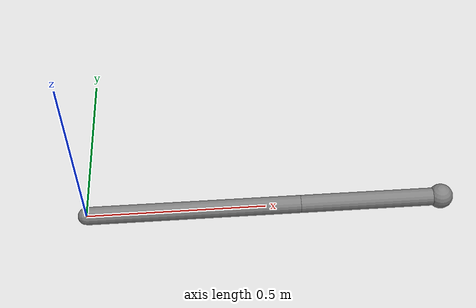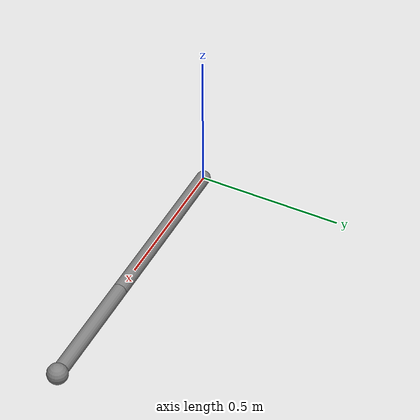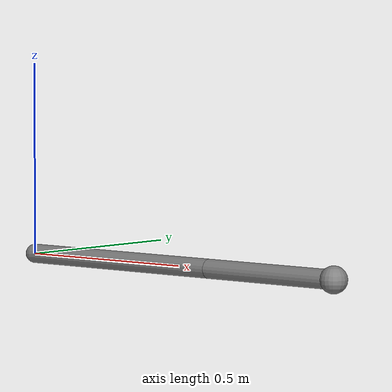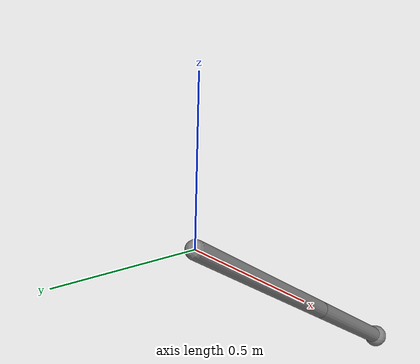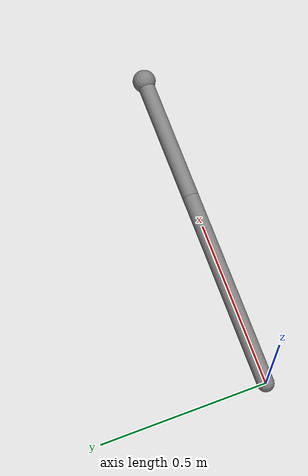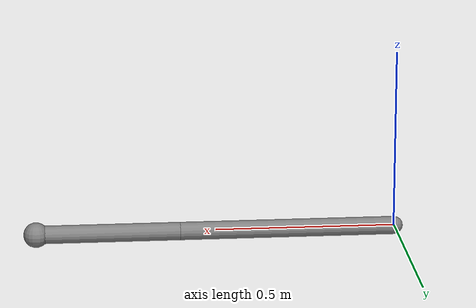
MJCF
<mujoco model="planar_arm">
  <compiler angle="radian"/>
  <option timestep="0.002" gravity="0 0 0" integrator="implicitfast"/>
  <default>
    <joint type="hinge" axis="0 0 1" damping="0.3" armature="0.05"/>
    <geom type="capsule" size="0.025" density="1000" contype="0" conaffinity="0"/>
    <motor ctrllimited="true" ctrlrange="-20 20"/>
  </default>
  <worldbody>
    <body name="link1">
      <joint name="shoulder"/>
      <geom fromto="0 0 0 0.6 0 0"/>
      <body name="link2" pos="0.6 0 0">
        <joint name="elbow"/>
        <geom fromto="0 0 0 0.4 0 0"/>
        <site name="tip" pos="0.4 0 0" size="0.035"/>
      </body>
    </body>
  </worldbody>
  <actuator><motor joint="shoulder"/><motor joint="elbow"/></actuator>
</mujoco>
